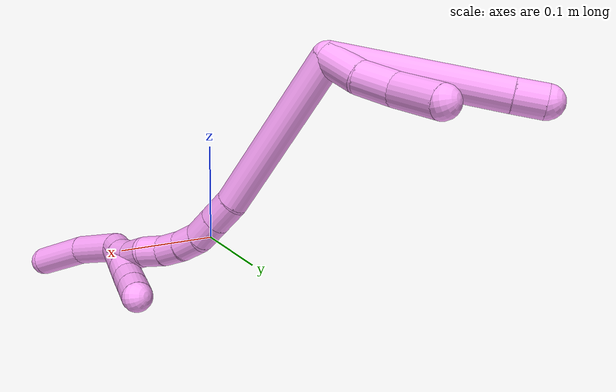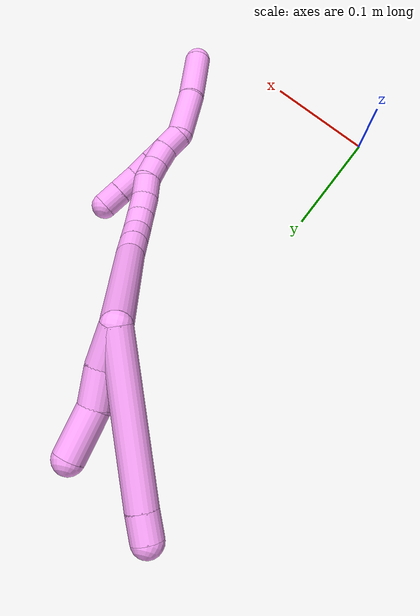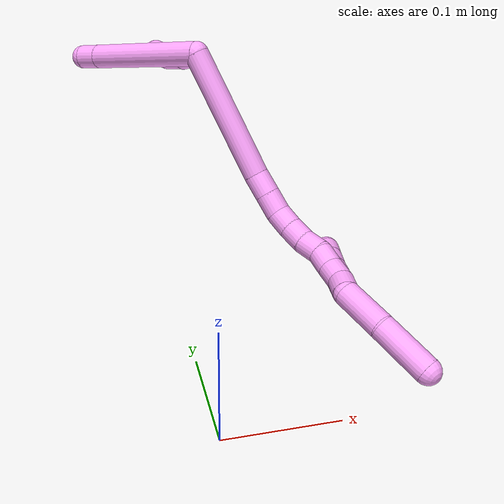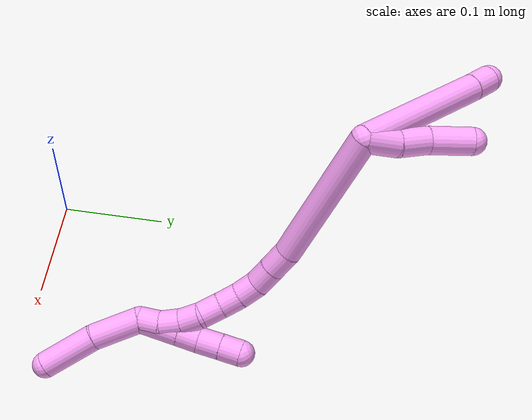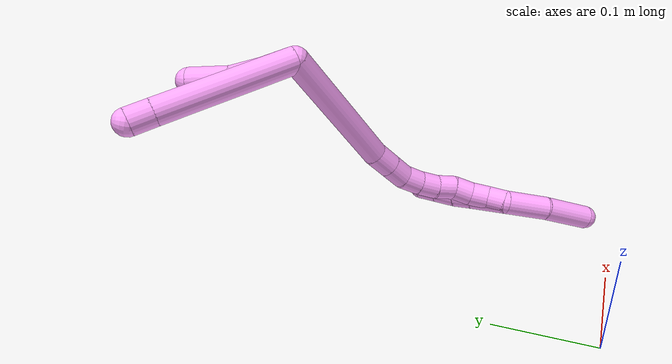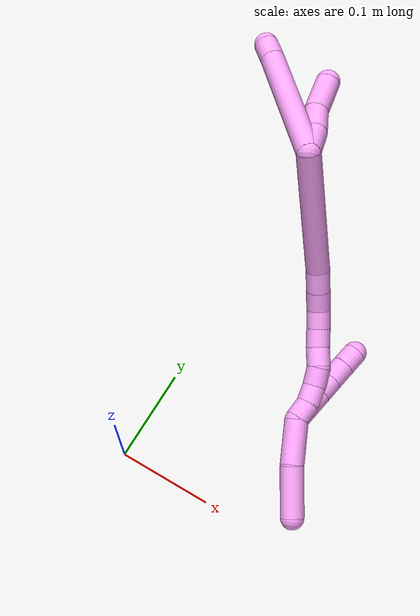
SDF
<sdf version="1.7">
 <world name="default">
  <model name="4">
   <static>0</static>
   <link name="4">
    <collision name="collision-cylinder-e_1_2_8">
     <pose>0.031881 -0.012642 0.054199 0.229153 0.520207 0.061234</pose>
     <geometry><cylinder><radius>0.0125</radius><length>0.128277</length></cylinder></geometry>
     <surface>
      <friction><ode><mu>1.16</mu><mu2>1.16</mu2><slip1>0</slip1><slip2>0</slip2></ode></friction>
      <contact><ode><kp>1e+06</kp><kd>1</kd><max_vel>0</max_vel><min_depth>0.001</min_depth></ode></contact>
     </surface>
    </collision>
    <visual name="visual-cylinder-e_1_2_8">
     <pose>0.031881 -0.012642 0.054199 0.229153 0.520207 0.061234</pose>
     <geometry><cylinder><radius>0.0125</radius><length>0.128277</length></cylinder></geometry>
     <material><ambient>1 0.65098 0.996078 1</ambient></material>
    </visual>
    <collision name="collision-cylinder-e_2_8_6">
     <pose>0.069451 -0.027119 0.117466 0.199686 0.551384 0.056664</pose>
     <geometry><cylinder><radius>0.0125</radius><length>0.021723</length></cylinder></geometry>
     <surface>
      <friction><ode><mu>1.16</mu><mu2>1.16</mu2><slip1>0</slip1><slip2>0</slip2></ode></friction>
      <contact><ode><kp>1e+06</kp><kd>1</kd><max_vel>0</max_vel><min_depth>0.001</min_depth></ode></contact>
     </surface>
    </collision>
    <visual name="visual-cylinder-e_2_8_6">
     <pose>0.069451 -0.027119 0.117466 0.199686 0.551384 0.056664</pose>
     <geometry><cylinder><radius>0.0125</radius><length>0.021723</length></cylinder></geometry>
     <material><ambient>1 0.65098 0.996078 1</ambient></material>
    </visual>
    <collision name="collision-cylinder-e_1_2_9">
     <pose>0.001985 -0.008997 0.012758 0.614181 0.126473 0.040156</pose>
     <geometry><cylinder><radius>0.0125</radius><length>0.031474</length></cylinder></geometry>
     <surface>
      <friction><ode><mu>1.16</mu><mu2>1.16</mu2><slip1>0</slip1><slip2>0</slip2></ode></friction>
      <contact><ode><kp>1e+06</kp><kd>1</kd><max_vel>0</max_vel><min_depth>0.001</min_depth></ode></contact>
     </surface>
    </collision>
    <visual name="visual-cylinder-e_1_2_9">
     <pose>0.001985 -0.008997 0.012758 0.614181 0.126473 0.040156</pose>
     <geometry><cylinder><radius>0.0125</radius><length>0.031474</length></cylinder></geometry>
     <material><ambient>1 0.65098 0.996078 1</ambient></material>
    </visual>
    <collision name="collision-cylinder-e_2_9_10">
     <pose>0.007343 -0.023739 0.038519 0.416082 0.232949 0.049388</pose>
     <geometry><cylinder><radius>0.0125</radius><length>0.029221</length></cylinder></geometry>
     <surface>
      <friction><ode><mu>1.16</mu><mu2>1.16</mu2><slip1>0</slip1><slip2>0</slip2></ode></friction>
      <contact><ode><kp>1e+06</kp><kd>1</kd><max_vel>0</max_vel><min_depth>0.001</min_depth></ode></contact>
     </surface>
    </collision>
    <visual name="visual-cylinder-e_2_9_10">
     <pose>0.007343 -0.023739 0.038519 0.416082 0.232949 0.049388</pose>
     <geometry><cylinder><radius>0.0125</radius><length>0.029221</length></cylinder></geometry>
     <material><ambient>1 0.65098 0.996078 1</ambient></material>
    </visual>
    <collision name="collision-cylinder-e_3_10_5">
     <pose>0.009557 -0.037242 0.069542 0.406509 -0.058994 -0.012162</pose>
     <geometry><cylinder><radius>0.0125</radius><length>0.039305</length></cylinder></geometry>
     <surface>
      <friction><ode><mu>1.16</mu><mu2>1.16</mu2><slip1>0</slip1><slip2>0</slip2></ode></friction>
      <contact><ode><kp>1e+06</kp><kd>1</kd><max_vel>0</max_vel><min_depth>0.001</min_depth></ode></contact>
     </surface>
    </collision>
    <visual name="visual-cylinder-e_3_10_5">
     <pose>0.009557 -0.037242 0.069542 0.406509 -0.058994 -0.012162</pose>
     <geometry><cylinder><radius>0.0125</radius><length>0.039305</length></cylinder></geometry>
     <material><ambient>1 0.65098 0.996078 1</ambient></material>
    </visual>
    <collision name="collision-cylinder-e_1_2_11">
     <pose>0.010038 -0.045507 -0.048548 2.38852 0.149729 0.374928</pose>
     <geometry><cylinder><radius>0.0125</radius><length>0.134589</length></cylinder></geometry>
     <surface>
      <friction><ode><mu>1.16</mu><mu2>1.16</mu2><slip1>0</slip1><slip2>0</slip2></ode></friction>
      <contact><ode><kp>1e+06</kp><kd>1</kd><max_vel>0</max_vel><min_depth>0.001</min_depth></ode></contact>
     </surface>
    </collision>
    <visual name="visual-cylinder-e_1_2_11">
     <pose>0.010038 -0.045507 -0.048548 2.38852 0.149729 0.374928</pose>
     <geometry><cylinder><radius>0.0125</radius><length>0.134589</length></cylinder></geometry>
     <material><ambient>1 0.65098 0.996078 1</ambient></material>
    </visual>
    <collision name="collision-cylinder-e_2_11_12">
     <pose>0.02156 -0.097178 -0.106643 2.56825 0.129833 0.434096</pose>
     <geometry><cylinder><radius>0.0125</radius><length>0.022921</length></cylinder></geometry>
     <surface>
      <friction><ode><mu>1.16</mu><mu2>1.16</mu2><slip1>0</slip1><slip2>0</slip2></ode></friction>
      <contact><ode><kp>1e+06</kp><kd>1</kd><max_vel>0</max_vel><min_depth>0.001</min_depth></ode></contact>
     </surface>
    </collision>
    <visual name="visual-cylinder-e_2_11_12">
     <pose>0.02156 -0.097178 -0.106643 2.56825 0.129833 0.434096</pose>
     <geometry><cylinder><radius>0.0125</radius><length>0.022921</length></cylinder></geometry>
     <material><ambient>1 0.65098 0.996078 1</ambient></material>
    </visual>
    <collision name="collision-cylinder-e_3_12_13">
     <pose>0.024491 -0.109179 -0.125278 2.57072 0.13312 0.446729</pose>
     <geometry><cylinder><radius>0.0125</radius><length>0.021795</length></cylinder></geometry>
     <surface>
      <friction><ode><mu>1.16</mu><mu2>1.16</mu2><slip1>0</slip1><slip2>0</slip2></ode></friction>
      <contact><ode><kp>1e+06</kp><kd>1</kd><max_vel>0</max_vel><min_depth>0.001</min_depth></ode></contact>
     </surface>
    </collision>
    <visual name="visual-cylinder-e_3_12_13">
     <pose>0.024491 -0.109179 -0.125278 2.57072 0.13312 0.446729</pose>
     <geometry><cylinder><radius>0.0125</radius><length>0.021795</length></cylinder></geometry>
     <material><ambient>1 0.65098 0.996078 1</ambient></material>
    </visual>
    <collision name="collision-cylinder-e_4_13_14">
     <pose>0.026221 -0.117878 -0.143999 2.85281 0.028217 0.19347</pose>
     <geometry><cylinder><radius>0.0125</radius><length>0.020106</length></cylinder></geometry>
     <surface>
      <friction><ode><mu>1.16</mu><mu2>1.16</mu2><slip1>0</slip1><slip2>0</slip2></ode></friction>
      <contact><ode><kp>1e+06</kp><kd>1</kd><max_vel>0</max_vel><min_depth>0.001</min_depth></ode></contact>
     </surface>
    </collision>
    <visual name="visual-cylinder-e_4_13_14">
     <pose>0.026221 -0.117878 -0.143999 2.85281 0.028217 0.19347</pose>
     <geometry><cylinder><radius>0.0125</radius><length>0.020106</length></cylinder></geometry>
     <material><ambient>1 0.65098 0.996078 1</ambient></material>
    </visual>
    <collision name="collision-cylinder-e_5_14_15">
     <pose>0.026415 -0.122202 -0.163595 2.99582 -0.008894 -0.121657</pose>
     <geometry><cylinder><radius>0.0125</radius><length>0.02014</length></cylinder></geometry>
     <surface>
      <friction><ode><mu>1.16</mu><mu2>1.16</mu2><slip1>0</slip1><slip2>0</slip2></ode></friction>
      <contact><ode><kp>1e+06</kp><kd>1</kd><max_vel>0</max_vel><min_depth>0.001</min_depth></ode></contact>
     </surface>
    </collision>
    <visual name="visual-cylinder-e_5_14_15">
     <pose>0.026415 -0.122202 -0.163595 2.99582 -0.008894 -0.121657</pose>
     <geometry><cylinder><radius>0.0125</radius><length>0.02014</length></cylinder></geometry>
     <material><ambient>1 0.65098 0.996078 1</ambient></material>
    </visual>
    <collision name="collision-cylinder-e_6_15_16">
     <pose>0.024789 -0.123872 -0.183649 3.12109 -0.151085 -2.87237</pose>
     <geometry><cylinder><radius>0.0125</radius><length>0.020418</length></cylinder></geometry>
     <surface>
      <friction><ode><mu>1.16</mu><mu2>1.16</mu2><slip1>0</slip1><slip2>0</slip2></ode></friction>
      <contact><ode><kp>1e+06</kp><kd>1</kd><max_vel>0</max_vel><min_depth>0.001</min_depth></ode></contact>
     </surface>
    </collision>
    <visual name="visual-cylinder-e_6_15_16">
     <pose>0.024789 -0.123872 -0.183649 3.12109 -0.151085 -2.87237</pose>
     <geometry><cylinder><radius>0.0125</radius><length>0.020418</length></cylinder></geometry>
     <material><ambient>1 0.65098 0.996078 1</ambient></material>
    </visual>
    <collision name="collision-cylinder-e_7_16_17">
     <pose>0.025045 -0.124748 -0.203563 3.07351 0.180067 2.42016</pose>
     <geometry><cylinder><radius>0.0125</radius><length>0.020017</length></cylinder></geometry>
     <surface>
      <friction><ode><mu>1.16</mu><mu2>1.16</mu2><slip1>0</slip1><slip2>0</slip2></ode></friction>
      <contact><ode><kp>1e+06</kp><kd>1</kd><max_vel>0</max_vel><min_depth>0.001</min_depth></ode></contact>
     </surface>
    </collision>
    <visual name="visual-cylinder-e_7_16_17">
     <pose>0.025045 -0.124748 -0.203563 3.07351 0.180067 2.42016</pose>
     <geometry><cylinder><radius>0.0125</radius><length>0.020017</length></cylinder></geometry>
     <material><ambient>1 0.65098 0.996078 1</ambient></material>
    </visual>
    <collision name="collision-cylinder-e_8_17_18">
     <pose>0.028706 -0.123805 -0.223078 -2.97666 0.187971 -1.70187</pose>
     <geometry><cylinder><radius>0.0125</radius><length>0.02</length></cylinder></geometry>
     <surface>
      <friction><ode><mu>1.16</mu><mu2>1.16</mu2><slip1>0</slip1><slip2>0</slip2></ode></friction>
      <contact><ode><kp>1e+06</kp><kd>1</kd><max_vel>0</max_vel><min_depth>0.001</min_depth></ode></contact>
     </surface>
    </collision>
    <visual name="visual-cylinder-e_8_17_18">
     <pose>0.028706 -0.123805 -0.223078 -2.97666 0.187971 -1.70187</pose>
     <geometry><cylinder><radius>0.0125</radius><length>0.02</length></cylinder></geometry>
     <material><ambient>1 0.65098 0.996078 1</ambient></material>
    </visual>
    <collision name="collision-cylinder-e_9_18_1">
     <pose>0.034243 -0.118225 -0.241191 -2.7014 0.375365 -1.40771</pose>
     <geometry><cylinder><radius>0.0125</radius><length>0.020013</length></cylinder></geometry>
     <surface>
      <friction><ode><mu>1.16</mu><mu2>1.16</mu2><slip1>0</slip1><slip2>0</slip2></ode></friction>
      <contact><ode><kp>1e+06</kp><kd>1</kd><max_vel>0</max_vel><min_depth>0.001</min_depth></ode></contact>
     </surface>
    </collision>
    <visual name="visual-cylinder-e_9_18_1">
     <pose>0.034243 -0.118225 -0.241191 -2.7014 0.375365 -1.40771</pose>
     <geometry><cylinder><radius>0.0125</radius><length>0.020013</length></cylinder></geometry>
     <material><ambient>1 0.65098 0.996078 1</ambient></material>
    </visual>
    <collision name="collision-cylinder-e_1_1_19">
     <pose>0.031491 -0.124472 -0.234913 0.60722 -0.344381 -0.108865</pose>
     <geometry><cylinder><radius>0.0125</radius><length>0.038034</length></cylinder></geometry>
     <surface>
      <friction><ode><mu>1.16</mu><mu2>1.16</mu2><slip1>0</slip1><slip2>0</slip2></ode></friction>
      <contact><ode><kp>1e+06</kp><kd>1</kd><max_vel>0</max_vel><min_depth>0.001</min_depth></ode></contact>
     </surface>
    </collision>
    <visual name="visual-cylinder-e_1_1_19">
     <pose>0.031491 -0.124472 -0.234913 0.60722 -0.344381 -0.108865</pose>
     <geometry><cylinder><radius>0.0125</radius><length>0.038034</length></cylinder></geometry>
     <material><ambient>1 0.65098 0.996078 1</ambient></material>
    </visual>
    <collision name="collision-cylinder-e_2_19_20">
     <pose>0.021796 -0.140192 -0.21251 0.620606 -0.332967 -0.107663</pose>
     <geometry><cylinder><radius>0.0125</radius><length>0.020036</length></cylinder></geometry>
     <surface>
      <friction><ode><mu>1.16</mu><mu2>1.16</mu2><slip1>0</slip1><slip2>0</slip2></ode></friction>
      <contact><ode><kp>1e+06</kp><kd>1</kd><max_vel>0</max_vel><min_depth>0.001</min_depth></ode></contact>
     </surface>
    </collision>
    <visual name="visual-cylinder-e_2_19_20">
     <pose>0.021796 -0.140192 -0.21251 0.620606 -0.332967 -0.107663</pose>
     <geometry><cylinder><radius>0.0125</radius><length>0.020036</length></cylinder></geometry>
     <material><ambient>1 0.65098 0.996078 1</ambient></material>
    </visual>
    <collision name="collision-cylinder-e_3_20_21">
     <pose>0.014209 -0.15074 -0.196078 0.523795 -0.404236 -0.109747</pose>
     <geometry><cylinder><radius>0.0125</radius><length>0.02193</length></cylinder></geometry>
     <surface>
      <friction><ode><mu>1.16</mu><mu2>1.16</mu2><slip1>0</slip1><slip2>0</slip2></ode></friction>
      <contact><ode><kp>1e+06</kp><kd>1</kd><max_vel>0</max_vel><min_depth>0.001</min_depth></ode></contact>
     </surface>
    </collision>
    <visual name="visual-cylinder-e_3_20_21">
     <pose>0.014209 -0.15074 -0.196078 0.523795 -0.404236 -0.109747</pose>
     <geometry><cylinder><radius>0.0125</radius><length>0.02193</length></cylinder></geometry>
     <material><ambient>1 0.65098 0.996078 1</ambient></material>
    </visual>
    <collision name="collision-cylinder-e_4_21_4">
     <pose>0.005952 -0.160517 -0.179473 0.541374 -0.405503 -0.11397</pose>
     <geometry><cylinder><radius>0.0125</radius><length>0.02</length></cylinder></geometry>
     <surface>
      <friction><ode><mu>1.16</mu><mu2>1.16</mu2><slip1>0</slip1><slip2>0</slip2></ode></friction>
      <contact><ode><kp>1e+06</kp><kd>1</kd><max_vel>0</max_vel><min_depth>0.001</min_depth></ode></contact>
     </surface>
    </collision>
    <visual name="visual-cylinder-e_4_21_4">
     <pose>0.005952 -0.160517 -0.179473 0.541374 -0.405503 -0.11397</pose>
     <geometry><cylinder><radius>0.0125</radius><length>0.02</length></cylinder></geometry>
     <material><ambient>1 0.65098 0.996078 1</ambient></material>
    </visual>
    <collision name="collision-cylinder-e_1_1_22">
     <pose>0.037844 -0.1142 -0.272965 -3.1391 -0.002879 1.71483</pose>
     <geometry><cylinder><radius>0.0125</radius><length>0.046704</length></cylinder></geometry>
     <surface>
      <friction><ode><mu>1.16</mu><mu2>1.16</mu2><slip1>0</slip1><slip2>0</slip2></ode></friction>
      <contact><ode><kp>1e+06</kp><kd>1</kd><max_vel>0</max_vel><min_depth>0.001</min_depth></ode></contact>
     </surface>
    </collision>
    <visual name="visual-cylinder-e_1_1_22">
     <pose>0.037844 -0.1142 -0.272965 -3.1391 -0.002879 1.71483</pose>
     <geometry><cylinder><radius>0.0125</radius><length>0.046704</length></cylinder></geometry>
     <material><ambient>1 0.65098 0.996078 1</ambient></material>
    </visual>
    <collision name="collision-cylinder-e_2_22_3">
     <pose>0.036672 -0.118421 -0.322596 2.98018 -0.041474 -0.502037</pose>
     <geometry><cylinder><radius>0.0125</radius><length>0.053296</length></cylinder></geometry>
     <surface>
      <friction><ode><mu>1.16</mu><mu2>1.16</mu2><slip1>0</slip1><slip2>0</slip2></ode></friction>
      <contact><ode><kp>1e+06</kp><kd>1</kd><max_vel>0</max_vel><min_depth>0.001</min_depth></ode></contact>
     </surface>
    </collision>
    <visual name="visual-cylinder-e_2_22_3">
     <pose>0.036672 -0.118421 -0.322596 2.98018 -0.041474 -0.502037</pose>
     <geometry><cylinder><radius>0.0125</radius><length>0.053296</length></cylinder></geometry>
     <material><ambient>1 0.65098 0.996078 1</ambient></material>
    </visual>
    <collision name="collision-sphere-3">
     <pose>0.035567 -0.1227 -0.348875 0 -0 0</pose>
     <geometry><sphere><radius>0.0125</radius></sphere></geometry>
     <surface>
      <friction><ode><mu>1.16</mu><mu2>1.16</mu2><slip1>0</slip1><slip2>0</slip2></ode></friction>
      <contact><ode><kp>1e+06</kp><kd>1</kd><max_vel>0</max_vel><min_depth>0.001</min_depth></ode></contact>
     </surface>
    </collision>
    <visual name="visual-sphere-3">
     <pose>0.035567 -0.1227 -0.348875 0 -0 0</pose>
     <geometry><sphere><radius>0.0125</radius></sphere></geometry>
     <material><ambient>1 0.65098 0.996078 1</ambient></material>
    </visual>
    <collision name="collision-sphere-22">
     <pose>0.037777 -0.114142 -0.296317 0 -0 0</pose>
     <geometry><sphere><radius>0.0125</radius></sphere></geometry>
     <surface>
      <friction><ode><mu>1.16</mu><mu2>1.16</mu2><slip1>0</slip1><slip2>0</slip2></ode></friction>
      <contact><ode><kp>1e+06</kp><kd>1</kd><max_vel>0</max_vel><min_depth>0.001</min_depth></ode></contact>
     </surface>
    </collision>
    <visual name="visual-sphere-22">
     <pose>0.037777 -0.114142 -0.296317 0 -0 0</pose>
     <geometry><sphere><radius>0.0125</radius></sphere></geometry>
     <material><ambient>1 0.65098 0.996078 1</ambient></material>
    </visual>
    <collision name="collision-sphere-4">
     <pose>0.002007 -0.165253 -0.171598 0 -0 0</pose>
     <geometry><sphere><radius>0.0125</radius></sphere></geometry>
     <surface>
      <friction><ode><mu>1.16</mu><mu2>1.16</mu2><slip1>0</slip1><slip2>0</slip2></ode></friction>
      <contact><ode><kp>1e+06</kp><kd>1</kd><max_vel>0</max_vel><min_depth>0.001</min_depth></ode></contact>
     </surface>
    </collision>
    <visual name="visual-sphere-4">
     <pose>0.002007 -0.165253 -0.171598 0 -0 0</pose>
     <geometry><sphere><radius>0.0125</radius></sphere></geometry>
     <material><ambient>1 0.65098 0.996078 1</ambient></material>
    </visual>
    <collision name="collision-sphere-21">
     <pose>0.009896 -0.155782 -0.187348 0 -0 0</pose>
     <geometry><sphere><radius>0.0125</radius></sphere></geometry>
     <surface>
      <friction><ode><mu>1.16</mu><mu2>1.16</mu2><slip1>0</slip1><slip2>0</slip2></ode></friction>
      <contact><ode><kp>1e+06</kp><kd>1</kd><max_vel>0</max_vel><min_depth>0.001</min_depth></ode></contact>
     </surface>
    </collision>
    <visual name="visual-sphere-21">
     <pose>0.009896 -0.155782 -0.187348 0 -0 0</pose>
     <geometry><sphere><radius>0.0125</radius></sphere></geometry>
     <material><ambient>1 0.65098 0.996078 1</ambient></material>
    </visual>
    <collision name="collision-sphere-20">
     <pose>0.018522 -0.145698 -0.204808 0 -0 0</pose>
     <geometry><sphere><radius>0.0125</radius></sphere></geometry>
     <surface>
      <friction><ode><mu>1.16</mu><mu2>1.16</mu2><slip1>0</slip1><slip2>0</slip2></ode></friction>
      <contact><ode><kp>1e+06</kp><kd>1</kd><max_vel>0</max_vel><min_depth>0.001</min_depth></ode></contact>
     </surface>
    </collision>
    <visual name="visual-sphere-20">
     <pose>0.018522 -0.145698 -0.204808 0 -0 0</pose>
     <geometry><sphere><radius>0.0125</radius></sphere></geometry>
     <material><ambient>1 0.65098 0.996078 1</ambient></material>
    </visual>
    <collision name="collision-sphere-5">
     <pose>0.008398 -0.044999 0.087562 0 -0 0</pose>
     <geometry><sphere><radius>0.0125</radius></sphere></geometry>
     <surface>
      <friction><ode><mu>1.16</mu><mu2>1.16</mu2><slip1>0</slip1><slip2>0</slip2></ode></friction>
      <contact><ode><kp>1e+06</kp><kd>1</kd><max_vel>0</max_vel><min_depth>0.001</min_depth></ode></contact>
     </surface>
    </collision>
    <visual name="visual-sphere-5">
     <pose>0.008398 -0.044999 0.087562 0 -0 0</pose>
     <geometry><sphere><radius>0.0125</radius></sphere></geometry>
     <material><ambient>1 0.65098 0.996078 1</ambient></material>
    </visual>
    <collision name="collision-sphere-10">
     <pose>0.010716 -0.029485 0.051522 0 -0 0</pose>
     <geometry><sphere><radius>0.0125</radius></sphere></geometry>
     <surface>
      <friction><ode><mu>1.16</mu><mu2>1.16</mu2><slip1>0</slip1><slip2>0</slip2></ode></friction>
      <contact><ode><kp>1e+06</kp><kd>1</kd><max_vel>0</max_vel><min_depth>0.001</min_depth></ode></contact>
     </surface>
    </collision>
    <visual name="visual-sphere-10">
     <pose>0.010716 -0.029485 0.051522 0 -0 0</pose>
     <geometry><sphere><radius>0.0125</radius></sphere></geometry>
     <material><ambient>1 0.65098 0.996078 1</ambient></material>
    </visual>
    <collision name="collision-sphere-6">
     <pose>0.075141 -0.028954 0.126534 0 -0 0</pose>
     <geometry><sphere><radius>0.0125</radius></sphere></geometry>
     <surface>
      <friction><ode><mu>1.16</mu><mu2>1.16</mu2><slip1>0</slip1><slip2>0</slip2></ode></friction>
      <contact><ode><kp>1e+06</kp><kd>1</kd><max_vel>0</max_vel><min_depth>0.001</min_depth></ode></contact>
     </surface>
    </collision>
    <visual name="visual-sphere-6">
     <pose>0.075141 -0.028954 0.126534 0 -0 0</pose>
     <geometry><sphere><radius>0.0125</radius></sphere></geometry>
     <material><ambient>1 0.65098 0.996078 1</ambient></material>
    </visual>
    <collision name="collision-sphere-9">
     <pose>0.00397 -0.017993 0.025517 0 -0 0</pose>
     <geometry><sphere><radius>0.0125</radius></sphere></geometry>
     <surface>
      <friction><ode><mu>1.16</mu><mu2>1.16</mu2><slip1>0</slip1><slip2>0</slip2></ode></friction>
      <contact><ode><kp>1e+06</kp><kd>1</kd><max_vel>0</max_vel><min_depth>0.001</min_depth></ode></contact>
     </surface>
    </collision>
    <visual name="visual-sphere-9">
     <pose>0.00397 -0.017993 0.025517 0 -0 0</pose>
     <geometry><sphere><radius>0.0125</radius></sphere></geometry>
     <material><ambient>1 0.65098 0.996078 1</ambient></material>
    </visual>
    <collision name="collision-sphere-2">
     <geometry><sphere><radius>0.0125</radius></sphere></geometry>
     <surface>
      <friction><ode><mu>1.16</mu><mu2>1.16</mu2><slip1>0</slip1><slip2>0</slip2></ode></friction>
      <contact><ode><kp>1e+06</kp><kd>1</kd><max_vel>0</max_vel><min_depth>0.001</min_depth></ode></contact>
     </surface>
    </collision>
    <visual name="visual-sphere-2">
     <geometry><sphere><radius>0.0125</radius></sphere></geometry>
     <material><ambient>1 0.65098 0.996078 1</ambient></material>
    </visual>
    <collision name="collision-sphere-19">
     <pose>0.02507 -0.134686 -0.220212 0 -0 0</pose>
     <geometry><sphere><radius>0.0125</radius></sphere></geometry>
     <surface>
      <friction><ode><mu>1.16</mu><mu2>1.16</mu2><slip1>0</slip1><slip2>0</slip2></ode></friction>
      <contact><ode><kp>1e+06</kp><kd>1</kd><max_vel>0</max_vel><min_depth>0.001</min_depth></ode></contact>
     </surface>
    </collision>
    <visual name="visual-sphere-19">
     <pose>0.02507 -0.134686 -0.220212 0 -0 0</pose>
     <geometry><sphere><radius>0.0125</radius></sphere></geometry>
     <material><ambient>1 0.65098 0.996078 1</ambient></material>
    </visual>
    <collision name="collision-sphere-8">
     <pose>0.063761 -0.025284 0.108398 0 -0 0</pose>
     <geometry><sphere><radius>0.0125</radius></sphere></geometry>
     <surface>
      <friction><ode><mu>1.16</mu><mu2>1.16</mu2><slip1>0</slip1><slip2>0</slip2></ode></friction>
      <contact><ode><kp>1e+06</kp><kd>1</kd><max_vel>0</max_vel><min_depth>0.001</min_depth></ode></contact>
     </surface>
    </collision>
    <visual name="visual-sphere-8">
     <pose>0.063761 -0.025284 0.108398 0 -0 0</pose>
     <geometry><sphere><radius>0.0125</radius></sphere></geometry>
     <material><ambient>1 0.65098 0.996078 1</ambient></material>
    </visual>
    <collision name="collision-sphere-11">
     <pose>0.020077 -0.091014 -0.097096 0 -0 0</pose>
     <geometry><sphere><radius>0.0125</radius></sphere></geometry>
     <surface>
      <friction><ode><mu>1.16</mu><mu2>1.16</mu2><slip1>0</slip1><slip2>0</slip2></ode></friction>
      <contact><ode><kp>1e+06</kp><kd>1</kd><max_vel>0</max_vel><min_depth>0.001</min_depth></ode></contact>
     </surface>
    </collision>
    <visual name="visual-sphere-11">
     <pose>0.020077 -0.091014 -0.097096 0 -0 0</pose>
     <geometry><sphere><radius>0.0125</radius></sphere></geometry>
     <material><ambient>1 0.65098 0.996078 1</ambient></material>
    </visual>
    <collision name="collision-sphere-12">
     <pose>0.023044 -0.103343 -0.11619 0 -0 0</pose>
     <geometry><sphere><radius>0.0125</radius></sphere></geometry>
     <surface>
      <friction><ode><mu>1.16</mu><mu2>1.16</mu2><slip1>0</slip1><slip2>0</slip2></ode></friction>
      <contact><ode><kp>1e+06</kp><kd>1</kd><max_vel>0</max_vel><min_depth>0.001</min_depth></ode></contact>
     </surface>
    </collision>
    <visual name="visual-sphere-12">
     <pose>0.023044 -0.103343 -0.11619 0 -0 0</pose>
     <geometry><sphere><radius>0.0125</radius></sphere></geometry>
     <material><ambient>1 0.65098 0.996078 1</ambient></material>
    </visual>
    <collision name="collision-sphere-13">
     <pose>0.025937 -0.115016 -0.134366 0 -0 0</pose>
     <geometry><sphere><radius>0.0125</radius></sphere></geometry>
     <surface>
      <friction><ode><mu>1.16</mu><mu2>1.16</mu2><slip1>0</slip1><slip2>0</slip2></ode></friction>
      <contact><ode><kp>1e+06</kp><kd>1</kd><max_vel>0</max_vel><min_depth>0.001</min_depth></ode></contact>
     </surface>
    </collision>
    <visual name="visual-sphere-13">
     <pose>0.025937 -0.115016 -0.134366 0 -0 0</pose>
     <geometry><sphere><radius>0.0125</radius></sphere></geometry>
     <material><ambient>1 0.65098 0.996078 1</ambient></material>
    </visual>
    <collision name="collision-sphere-14">
     <pose>0.026504 -0.120739 -0.153632 0 -0 0</pose>
     <geometry><sphere><radius>0.0125</radius></sphere></geometry>
     <surface>
      <friction><ode><mu>1.16</mu><mu2>1.16</mu2><slip1>0</slip1><slip2>0</slip2></ode></friction>
      <contact><ode><kp>1e+06</kp><kd>1</kd><max_vel>0</max_vel><min_depth>0.001</min_depth></ode></contact>
     </surface>
    </collision>
    <visual name="visual-sphere-14">
     <pose>0.026504 -0.120739 -0.153632 0 -0 0</pose>
     <geometry><sphere><radius>0.0125</radius></sphere></geometry>
     <material><ambient>1 0.65098 0.996078 1</ambient></material>
    </visual>
    <collision name="collision-sphere-15">
     <pose>0.026325 -0.123665 -0.173558 0 -0 0</pose>
     <geometry><sphere><radius>0.0125</radius></sphere></geometry>
     <surface>
      <friction><ode><mu>1.16</mu><mu2>1.16</mu2><slip1>0</slip1><slip2>0</slip2></ode></friction>
      <contact><ode><kp>1e+06</kp><kd>1</kd><max_vel>0</max_vel><min_depth>0.001</min_depth></ode></contact>
     </surface>
    </collision>
    <visual name="visual-sphere-15">
     <pose>0.026325 -0.123665 -0.173558 0 -0 0</pose>
     <geometry><sphere><radius>0.0125</radius></sphere></geometry>
     <material><ambient>1 0.65098 0.996078 1</ambient></material>
    </visual>
    <collision name="collision-sphere-16">
     <pose>0.023252 -0.124079 -0.193739 0 -0 0</pose>
     <geometry><sphere><radius>0.0125</radius></sphere></geometry>
     <surface>
      <friction><ode><mu>1.16</mu><mu2>1.16</mu2><slip1>0</slip1><slip2>0</slip2></ode></friction>
      <contact><ode><kp>1e+06</kp><kd>1</kd><max_vel>0</max_vel><min_depth>0.001</min_depth></ode></contact>
     </surface>
    </collision>
    <visual name="visual-sphere-16">
     <pose>0.023252 -0.124079 -0.193739 0 -0 0</pose>
     <geometry><sphere><radius>0.0125</radius></sphere></geometry>
     <material><ambient>1 0.65098 0.996078 1</ambient></material>
    </visual>
    <collision name="collision-sphere-17">
     <pose>0.026837 -0.125418 -0.213387 0 -0 0</pose>
     <geometry><sphere><radius>0.0125</radius></sphere></geometry>
     <surface>
      <friction><ode><mu>1.16</mu><mu2>1.16</mu2><slip1>0</slip1><slip2>0</slip2></ode></friction>
      <contact><ode><kp>1e+06</kp><kd>1</kd><max_vel>0</max_vel><min_depth>0.001</min_depth></ode></contact>
     </surface>
    </collision>
    <visual name="visual-sphere-17">
     <pose>0.026837 -0.125418 -0.213387 0 -0 0</pose>
     <geometry><sphere><radius>0.0125</radius></sphere></geometry>
     <material><ambient>1 0.65098 0.996078 1</ambient></material>
    </visual>
    <collision name="collision-sphere-18">
     <pose>0.030574 -0.122192 -0.232769 0 -0 0</pose>
     <geometry><sphere><radius>0.0125</radius></sphere></geometry>
     <surface>
      <friction><ode><mu>1.16</mu><mu2>1.16</mu2><slip1>0</slip1><slip2>0</slip2></ode></friction>
      <contact><ode><kp>1e+06</kp><kd>1</kd><max_vel>0</max_vel><min_depth>0.001</min_depth></ode></contact>
     </surface>
    </collision>
    <visual name="visual-sphere-18">
     <pose>0.030574 -0.122192 -0.232769 0 -0 0</pose>
     <geometry><sphere><radius>0.0125</radius></sphere></geometry>
     <material><ambient>1 0.65098 0.996078 1</ambient></material>
    </visual>
    <collision name="collision-sphere-1">
     <pose>0.037911 -0.114258 -0.249613 0 -0 0</pose>
     <geometry><sphere><radius>0.0125</radius></sphere></geometry>
     <surface>
      <friction><ode><mu>1.16</mu><mu2>1.16</mu2><slip1>0</slip1><slip2>0</slip2></ode></friction>
      <contact><ode><kp>1e+06</kp><kd>1</kd><max_vel>0</max_vel><min_depth>0.001</min_depth></ode></contact>
     </surface>
    </collision>
    <visual name="visual-sphere-1">
     <pose>0.037911 -0.114258 -0.249613 0 -0 0</pose>
     <geometry><sphere><radius>0.0125</radius></sphere></geometry>
     <material><ambient>1 0.65098 0.996078 1</ambient></material>
    </visual>
    <inertial>
     <pose>0.023657 -0.074383 -0.096361 0 -0 0</pose>
     <mass>0.75</mass>
     <inertia><ixx>0.000482</ixx><ixy>0</ixy><ixz>0</ixz><iyy>0.00012</iyy><iyz>0</iyz><izz>6.9e-05</izz></inertia>
    </inertial>
   </link>
   <pose>0.041264 0.298354 0.222632 1.2848 0.432042 -2.84028</pose>
  </model>
 </world>
</sdf>
